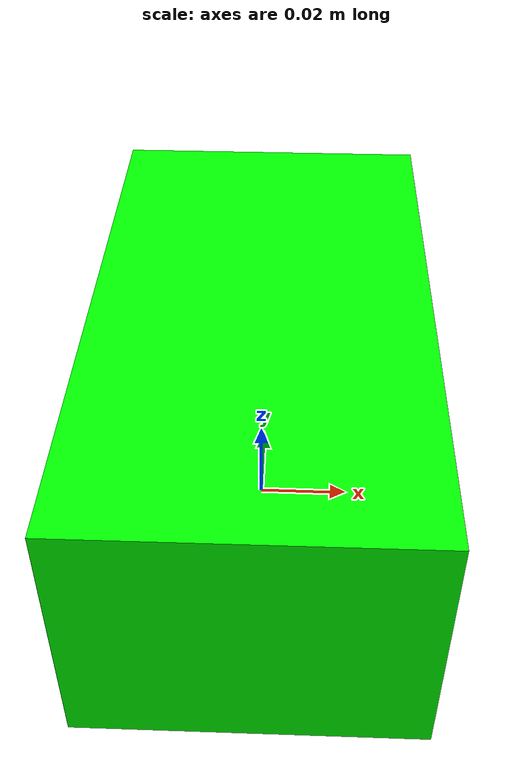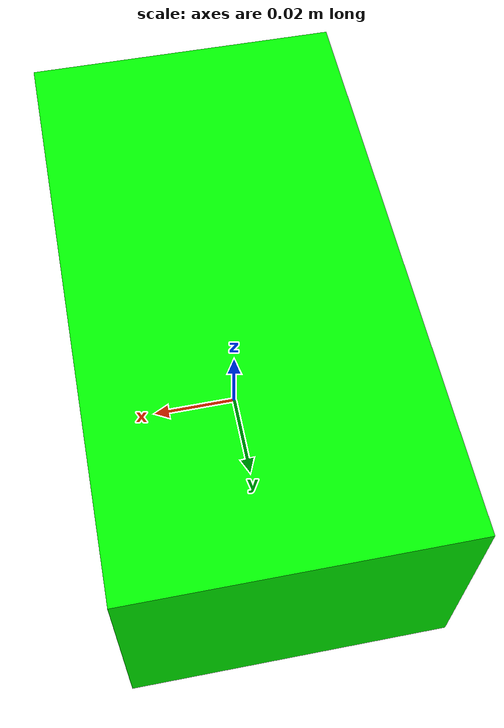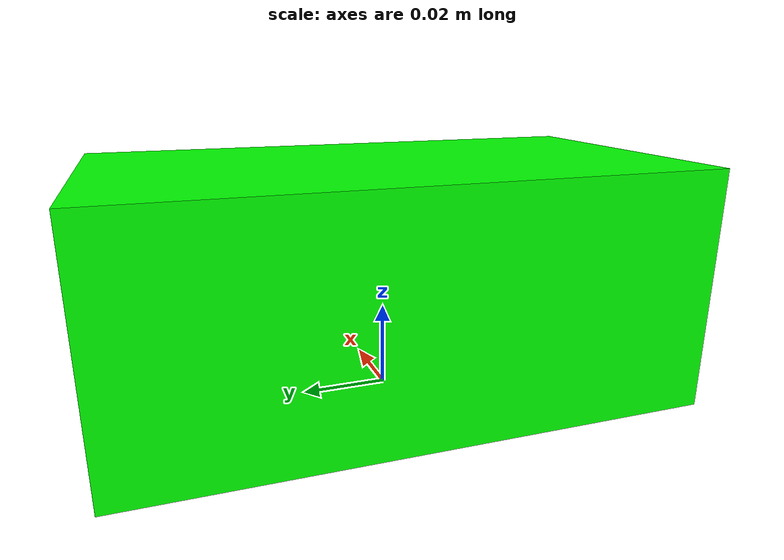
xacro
<?xml version="1.0" ?>
<robot name="body" xmlns:xacro="http://ros.org/wiki/xacro">
<link name="base_link" />

<xacro:property name="b_m" value="0.168"/>
<xacro:property name="b_m2" value="${b_m/12}"/>
<xacro:property name="b_w" value="0.07"/>
<xacro:property name="b_h" value="0.13"/>
<xacro:property name="b_d" value="0.055"/>
<link name="body">
   <visual>
　　<geometry>
　　　<box size="${b_w} ${b_h} ${b_d}" />
     </geometry>
     <material name="red">
        <color rgba="0.0 1.0 0.0 2.0"/>
      </material>

  </visual>
   <collision>
　　<geometry>
　　　<box size="${b_w} ${b_h} ${b_d}" />
     </geometry>
  </collision>
  <inertial>
     <origin xyz="0 0 0" rpy="0 0 0" />
     <mass value="${b_m}" />
     <inertia ixx="${b_m2*(b_h*b_h+b_d*b_d)}" ixy="0"    ixz="0"
                 iyx="0"   iyy="${b_m2*(b_w*b_w+b_d*b_d)}"  iyz="0"
		 izx="0"   izy="0"  izz="${b_m2*(b_w*b_w+b_h*b_h)}" />
  </inertial>
</link>
<gazebo reference="body">
    <material>Gazebo/Orange</material>
</gazebo>
<joint name="body_joint" type="fixed">
<parent link="base_link" />
   <child link="body" />
   <origin xyz="0 0 0.0275" rpy="0 0 0" />
</joint>
</robot>
